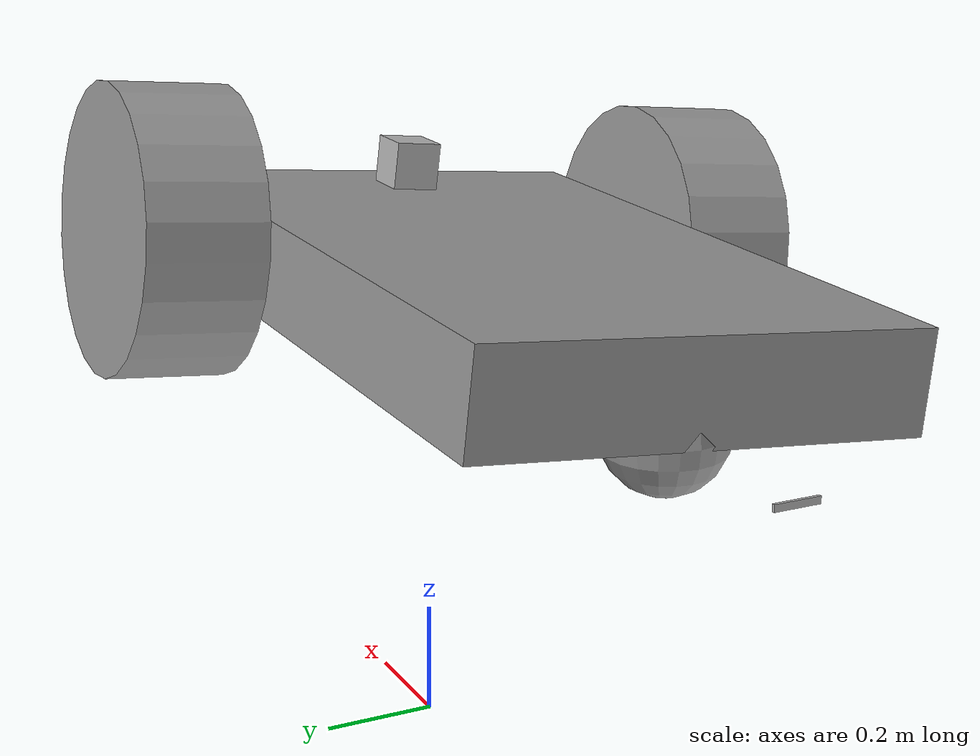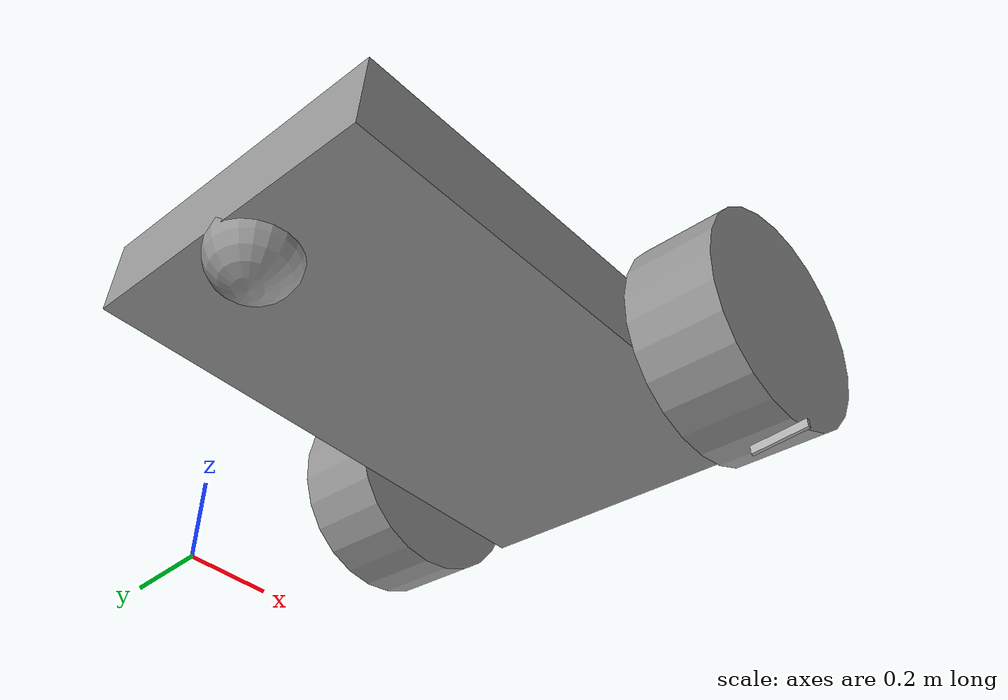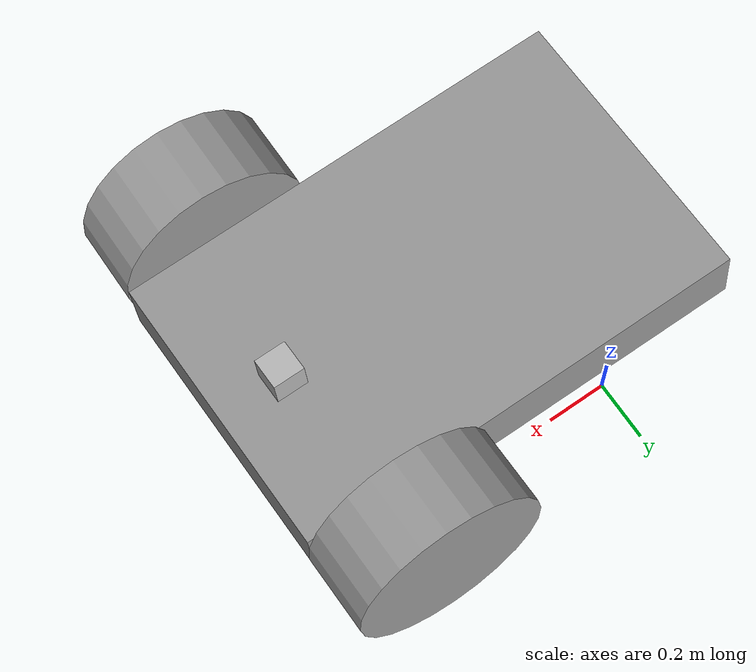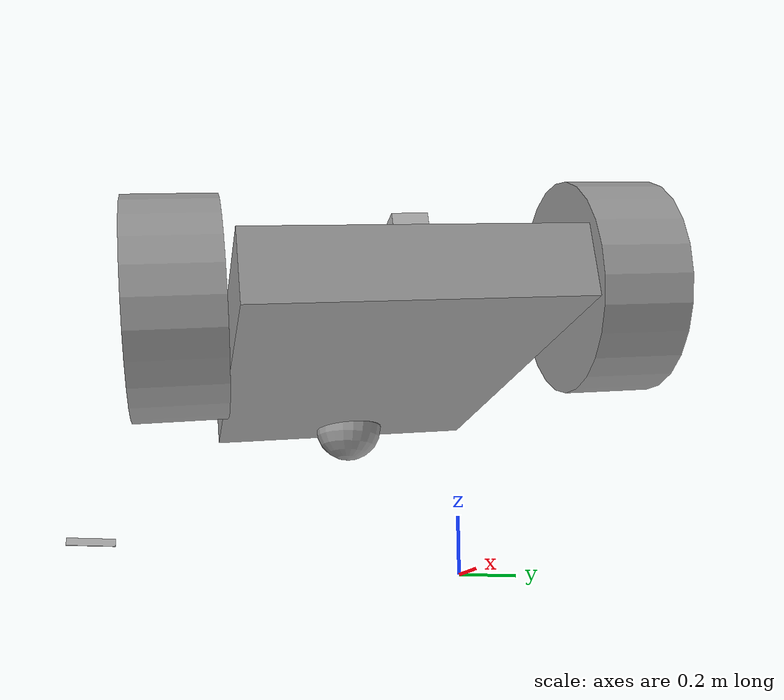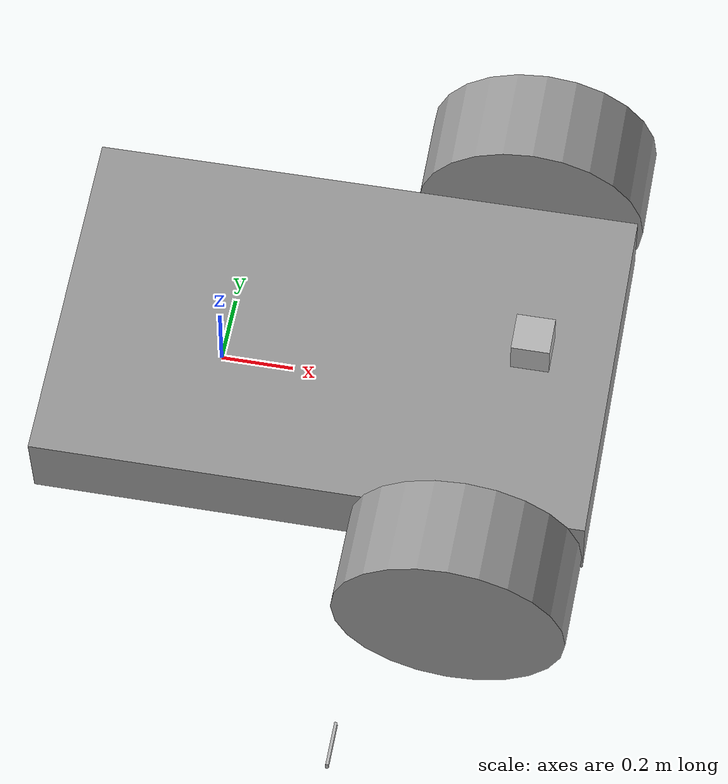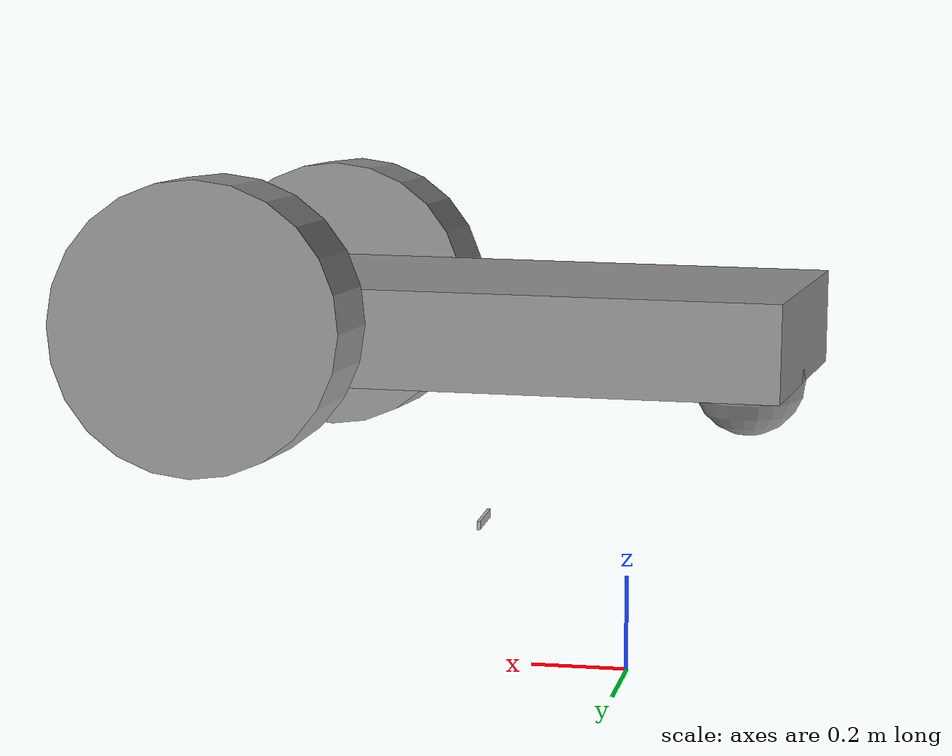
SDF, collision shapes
<?xml version='1.0'?>
<sdf version='1.6'>
  <model name='gazebo_finally1'>
    <link name='link_0'>
      <inertial>
        <mass>0.268461</mass>
        <inertia>
          <ixx>0.019799</ixx>
          <ixy>0</ixy>
          <ixz>0</ixz>
          <iyy>0.0470204</iyy>
          <iyz>0</iyz>
          <izz>0.064964</izz>
        </inertia>
        <pose frame=''>0 0 0 0 -0 0</pose>
      </inertial>
      <pose frame=''>0.399341 -0.379491 0.647925 0.1 -0 0</pose>
      <gravity>1</gravity>
      <self_collide>0</self_collide>
      <kinematic>0</kinematic>
      <enable_wind>0</enable_wind>
      <visual name='visual'>
        <pose frame=''>0 0 0 0 -0 0</pose>
        <geometry>
          <box>
            <size>1.43538 0.918441 0.203637</size>
          </box>
        </geometry>
        <material>
          <lighting>1</lighting>
          <script>
            <uri>file://media/materials/scripts/gazebo.material</uri>
            <name>Gazebo/Grey</name>
          </script>
          <shader type='vertex'>
            <normal_map>__default__</normal_map>
          </shader>
          <ambient>0.3 0.3 0.3 1</ambient>
          <diffuse>0.7 0.7 0.7 1</diffuse>
          <specular>0.01 0.01 0.01 1</specular>
          <emissive>0 0 0 1</emissive>
        </material>
        <transparency>0</transparency>
        <cast_shadows>1</cast_shadows>
      </visual>
      <collision name='collision'>
        <laser_retro>0</laser_retro>
        <max_contacts>10</max_contacts>
        <pose frame=''>0 0 0 0 -0 0</pose>
        <geometry>
          <box>
            <size>1.43538 0.918441 0.203637</size>
          </box>
        </geometry>
        <surface>
          <friction>
            <ode>
              <mu>1</mu>
              <mu2>1</mu2>
              <fdir1>0 0 0</fdir1>
              <slip1>0</slip1>
              <slip2>0</slip2>
            </ode>
            <torsional>
              <coefficient>1</coefficient>
              <patch_radius>0</patch_radius>
              <surface_radius>0</surface_radius>
              <use_patch_radius>1</use_patch_radius>
              <ode>
                <slip>0</slip>
              </ode>
            </torsional>
          </friction>
          <bounce>
            <restitution_coefficient>0</restitution_coefficient>
            <threshold>1e+06</threshold>
          </bounce>
          <contact>
            <collide_without_contact>0</collide_without_contact>
            <collide_without_contact_bitmask>1</collide_without_contact_bitmask>
            <collide_bitmask>1</collide_bitmask>
            <ode>
              <soft_cfm>0</soft_cfm>
              <soft_erp>0.2</soft_erp>
              <kp>1e+13</kp>
              <kd>1</kd>
              <max_vel>0.01</max_vel>
              <min_depth>0</min_depth>
            </ode>
            <bullet>
              <split_impulse>1</split_impulse>
              <split_impulse_penetration_threshold>-0.01</split_impulse_penetration_threshold>
              <soft_cfm>0</soft_cfm>
              <soft_erp>0.2</soft_erp>
              <kp>1e+13</kp>
              <kd>1</kd>
            </bullet>
          </contact>
        </surface>
      </collision>
    </link>
    <link name='link_2_clone'>
      <inertial>
        <mass>1</mass>
        <inertia>
          <ixx>0.145833</ixx>
          <ixy>0</ixy>
          <ixz>0</ixz>
          <iyy>0.145833</iyy>
          <iyz>0</iyz>
          <izz>0.125</izz>
        </inertia>
        <pose frame=''>0 0 0 1.5707 -0 0</pose>
      </inertial>
      <pose frame=''>0.831087 0.215329 0.738794 1.6717 -0 0</pose>
      <gravity>1</gravity>
      <self_collide>0</self_collide>
      <kinematic>0</kinematic>
      <enable_wind>0</enable_wind>
      <visual name='visual'>
        <pose frame=''>0 0 0 0 -0 0</pose>
        <geometry>
          <cylinder>
            <radius>0.3</radius>
            <length>0.25</length>
          </cylinder>
        </geometry>
        <material>
          <lighting>1</lighting>
          <script>
            <uri>file://media/materials/scripts/gazebo.material</uri>
            <name>Gazebo/Grey</name>
          </script>
          <shader type='vertex'>
            <normal_map>__default__</normal_map>
          </shader>
          <ambient>0.3 0.3 0.3 1</ambient>
          <diffuse>0.7 0.7 0.7 1</diffuse>
          <specular>0.01 0.01 0.01 1</specular>
          <emissive>0 0 0 1</emissive>
        </material>
        <transparency>0</transparency>
        <cast_shadows>1</cast_shadows>
      </visual>
      <collision name='collision'>
        <laser_retro>0</laser_retro>
        <max_contacts>10</max_contacts>
        <pose frame=''>0 0 0 0 -0 0</pose>
        <geometry>
          <cylinder>
            <radius>0.3</radius>
            <length>0.25</length>
          </cylinder>
        </geometry>
        <surface>
          <friction>
            <ode>
              <mu>1</mu>
              <mu2>1</mu2>
              <fdir1>0 0 0</fdir1>
              <slip1>0</slip1>
              <slip2>0</slip2>
            </ode>
            <torsional>
              <coefficient>1</coefficient>
              <patch_radius>0</patch_radius>
              <surface_radius>0</surface_radius>
              <use_patch_radius>1</use_patch_radius>
              <ode>
                <slip>0</slip>
              </ode>
            </torsional>
          </friction>
          <bounce>
            <restitution_coefficient>0</restitution_coefficient>
            <threshold>1e+06</threshold>
          </bounce>
          <contact>
            <collide_without_contact>0</collide_without_contact>
            <collide_without_contact_bitmask>1</collide_without_contact_bitmask>
            <collide_bitmask>1</collide_bitmask>
            <ode>
              <soft_cfm>0</soft_cfm>
              <soft_erp>0.2</soft_erp>
              <kp>1e+13</kp>
              <kd>1</kd>
              <max_vel>0.01</max_vel>
              <min_depth>0</min_depth>
            </ode>
            <bullet>
              <split_impulse>1</split_impulse>
              <split_impulse_penetration_threshold>-0.01</split_impulse_penetration_threshold>
              <soft_cfm>0</soft_cfm>
              <soft_erp>0.2</soft_erp>
              <kp>1e+13</kp>
              <kd>1</kd>
            </bullet>
          </contact>
        </surface>
      </collision>
    </link>
    <link name='link_2_clone_clone'>
      <inertial>
        <mass>1</mass>
        <inertia>
          <ixx>0.145833</ixx>
          <ixy>0</ixy>
          <ixz>0</ixz>
          <iyy>0.145833</iyy>
          <iyz>0</iyz>
          <izz>0.125</izz>
        </inertia>
        <pose frame=''>0 0 0 0 -0 0</pose>
      </inertial>
      <pose frame=''>0.814783 -0.985352 0.594172 1.675 0.001809 -0.014974</pose>
      <gravity>1</gravity>
      <self_collide>0</self_collide>
      <kinematic>0</kinematic>
      <enable_wind>0</enable_wind>
      <visual name='visual'>
        <pose frame=''>0 0 0 0 -0 0</pose>
        <geometry>
          <cylinder>
            <radius>0.3</radius>
            <length>0.25</length>
          </cylinder>
        </geometry>
        <material>
          <lighting>1</lighting>
          <script>
            <uri>file://media/materials/scripts/gazebo.material</uri>
            <name>Gazebo/Grey</name>
          </script>
          <shader type='vertex'>
            <normal_map>__default__</normal_map>
          </shader>
          <ambient>0.3 0.3 0.3 1</ambient>
          <diffuse>0.7 0.7 0.7 1</diffuse>
          <specular>0.01 0.01 0.01 1</specular>
          <emissive>0 0 0 1</emissive>
        </material>
        <transparency>0</transparency>
        <cast_shadows>1</cast_shadows>
      </visual>
      <collision name='collision'>
        <laser_retro>0</laser_retro>
        <max_contacts>10</max_contacts>
        <pose frame=''>0 0 0 0 -0 0</pose>
        <geometry>
          <cylinder>
            <radius>0.3</radius>
            <length>0.25</length>
          </cylinder>
        </geometry>
        <surface>
          <friction>
            <ode>
              <mu>1</mu>
              <mu2>1</mu2>
              <fdir1>0 0 0</fdir1>
              <slip1>0</slip1>
              <slip2>0</slip2>
            </ode>
            <torsional>
              <coefficient>1</coefficient>
              <patch_radius>0</patch_radius>
              <surface_radius>0</surface_radius>
              <use_patch_radius>1</use_patch_radius>
              <ode>
                <slip>0</slip>
              </ode>
            </torsional>
          </friction>
          <bounce>
            <restitution_coefficient>0</restitution_coefficient>
            <threshold>1e+06</threshold>
          </bounce>
          <contact>
            <collide_without_contact>0</collide_without_contact>
            <collide_without_contact_bitmask>1</collide_without_contact_bitmask>
            <collide_bitmask>1</collide_bitmask>
            <ode>
              <soft_cfm>0</soft_cfm>
              <soft_erp>0.2</soft_erp>
              <kp>1e+13</kp>
              <kd>1</kd>
              <max_vel>0.01</max_vel>
              <min_depth>0</min_depth>
            </ode>
            <bullet>
              <split_impulse>1</split_impulse>
              <split_impulse_penetration_threshold>-0.01</split_impulse_penetration_threshold>
              <soft_cfm>0</soft_cfm>
              <soft_erp>0.2</soft_erp>
              <kp>1e+13</kp>
              <kd>1</kd>
            </bullet>
          </contact>
        </surface>
      </collision>
    </link>
    <link name='link_5'>
      <inertial>
        <mass>1</mass>
        <inertia>
          <ixx>0.1</ixx>
          <ixy>0</ixy>
          <ixz>0</ixz>
          <iyy>0.1</iyy>
          <iyz>0</iyz>
          <izz>0.1</izz>
        </inertia>
        <pose frame=''>0 0 0 0 -0 0</pose>
      </inertial>
      <pose frame=''>-0.203161 -0.358328 0.551395 -0 -0 -0</pose>
      <gravity>1</gravity>
      <self_collide>0</self_collide>
      <kinematic>0</kinematic>
      <enable_wind>0</enable_wind>
      <visual name='visual'>
        <pose frame=''>0 0 0 0 -0 0</pose>
        <geometry>
          <sphere>
            <radius>0.12</radius>
          </sphere>
        </geometry>
        <material>
          <lighting>1</lighting>
          <script>
            <uri>file://media/materials/scripts/gazebo.material</uri>
            <name>Gazebo/Grey</name>
          </script>
          <shader type='vertex'>
            <normal_map>__default__</normal_map>
          </shader>
          <ambient>0.3 0.3 0.3 1</ambient>
          <diffuse>0.7 0.7 0.7 1</diffuse>
          <specular>0.01 0.01 0.01 1</specular>
          <emissive>0 0 0 1</emissive>
        </material>
        <transparency>0</transparency>
        <cast_shadows>1</cast_shadows>
      </visual>
      <collision name='collision'>
        <laser_retro>0</laser_retro>
        <max_contacts>10</max_contacts>
        <pose frame=''>0 0 0 0 -0 0</pose>
        <geometry>
          <sphere>
            <radius>0.12</radius>
          </sphere>
        </geometry>
        <surface>
          <friction>
            <ode>
              <mu>1</mu>
              <mu2>1</mu2>
              <fdir1>0 0 0</fdir1>
              <slip1>0</slip1>
              <slip2>0</slip2>
            </ode>
            <torsional>
              <coefficient>1</coefficient>
              <patch_radius>0</patch_radius>
              <surface_radius>0</surface_radius>
              <use_patch_radius>1</use_patch_radius>
              <ode>
                <slip>0</slip>
              </ode>
            </torsional>
          </friction>
          <bounce>
            <restitution_coefficient>0</restitution_coefficient>
            <threshold>1e+06</threshold>
          </bounce>
          <contact>
            <collide_without_contact>0</collide_without_contact>
            <collide_without_contact_bitmask>1</collide_without_contact_bitmask>
            <collide_bitmask>1</collide_bitmask>
            <ode>
              <soft_cfm>0</soft_cfm>
              <soft_erp>0.2</soft_erp>
              <kp>1e+13</kp>
              <kd>1</kd>
              <max_vel>0.01</max_vel>
              <min_depth>0</min_depth>
            </ode>
            <bullet>
              <split_impulse>1</split_impulse>
              <split_impulse_penetration_threshold>-0.01</split_impulse_penetration_threshold>
              <soft_cfm>0</soft_cfm>
              <soft_erp>0.2</soft_erp>
              <kp>1e+13</kp>
              <kd>1</kd>
            </bullet>
          </contact>
        </surface>
      </collision>
    </link>
    <model name='camera'>
      <pose frame=''>0.906951 -0.372268 0.81011 0.116955 -0 0</pose>
      <link name='link'>
        <inertial>
          <mass>0.1</mass>
          <inertia>
            <ixx>0.000166667</ixx>
            <iyy>0.000166667</iyy>
            <izz>0.000166667</izz>
            <ixy>0</ixy>
            <ixz>0</ixz>
            <iyz>0</iyz>
          </inertia>
        </inertial>
        <collision name='collision'>
          <geometry>
            <box>
              <size>0.1 0.1 0.1</size>
            </box>
          </geometry>
          <max_contacts>10</max_contacts>
          <surface>
            <contact>
              <ode/>
            </contact>
            <bounce/>
            <friction>
              <torsional>
                <ode/>
              </torsional>
              <ode/>
            </friction>
          </surface>
        </collision>
        <visual name='visual'>
          <geometry>
            <box>
              <size>0.1 0.1 0.1</size>
            </box>
          </geometry>
        </visual>
        <sensor name='camera' type='camera'>
          <camera name='__default__'>
            <horizontal_fov>1.047</horizontal_fov>
            <image>
              <width>320</width>
              <height>240</height>
            </image>
            <clip>
              <near>0.1</near>
              <far>100</far>
            </clip>
          </camera>
          <always_on>1</always_on>
          <update_rate>30</update_rate>
          <visualize>1</visualize>
        </sensor>
        <self_collide>0</self_collide>
        <enable_wind>0</enable_wind>
        <kinematic>0</kinematic>
      </link>
    </model>
    <model name='intel_realsense_r200'>
      <pose frame=''>0.527541 -1.17727 0.01 -0 -0 -0</pose>
      <link name='link'>
        <inertial>
          <mass>0.2</mass>
          <inertia>
            <ixx>0.00014395</ixx>
            <ixy>0</ixy>
            <ixz>0</ixz>
            <iyy>3.84e-06</iyy>
            <iyz>0</iyz>
            <izz>0.00014136</izz>
          </inertia>
        </inertial>
        <collision name='collision'>
          <geometry>
            <box>
              <size>0.008 0.13 0.02</size>
            </box>
          </geometry>
          <surface>
            <contact>
              <ode>
                <max_vel>0.1</max_vel>
                <min_depth>0.001</min_depth>
              </ode>
            </contact>
            <friction>
              <ode>
                <mu>0.4</mu>
                <mu2>0.4</mu2>
              </ode>
              <torsional>
                <ode/>
              </torsional>
            </friction>
            <bounce/>
          </surface>
          <max_contacts>10</max_contacts>
        </collision>
        <visual name='visual'>
          <geometry>
            <mesh>
              <uri>model://intel_realsense_r200/meshes/realsense_r200.dae</uri>
            </mesh>
          </geometry>
        </visual>
        <sensor name='camera' type='depth'>
          <pose frame=''>0.001 -0.045 0.003 0 -0 0</pose>
          <update_rate>60</update_rate>
          <camera name='__default__'>
            <horizontal_fov>0.976899</horizontal_fov>
            <image>
              <width>480</width>
              <height>360</height>
              <format>R8G8B8</format>
            </image>
            <clip>
              <near>0.5</near>
              <far>10</far>
            </clip>
          </camera>
        </sensor>
        <self_collide>0</self_collide>
        <enable_wind>0</enable_wind>
        <kinematic>0</kinematic>
      </link>
    </model>
    <joint name='link_0_JOINT_1' type='revolute'>
      <parent>link_0</parent>
      <child>link_2_clone</child>
      <pose frame=''>0 0 0 0 -0 0</pose>
      <axis>
        <xyz>0 0 1</xyz>
        <use_parent_model_frame>0</use_parent_model_frame>
        <limit>
          <lower>-1.79769e+308</lower>
          <upper>1.79769e+308</upper>
          <effort>-1</effort>
          <velocity>-1</velocity>
        </limit>
        <dynamics>
          <spring_reference>0</spring_reference>
          <spring_stiffness>0</spring_stiffness>
          <damping>0</damping>
        </dynamics>
      </axis>
      <physics>
        <ode>
          <limit>
            <cfm>0</cfm>
            <erp>0.2</erp>
          </limit>
          <suspension>
            <cfm>0</cfm>
            <erp>0.2</erp>
          </suspension>
        </ode>
      </physics>
    </joint>
    <joint name='link_0_JOINT_2' type='revolute'>
      <parent>link_0</parent>
      <child>link_2_clone_clone</child>
      <pose frame=''>0 0 0 0 -0 0</pose>
      <axis>
        <xyz>-0 -0 -1</xyz>
        <use_parent_model_frame>0</use_parent_model_frame>
        <limit>
          <lower>-1.79769e+308</lower>
          <upper>1.79769e+308</upper>
          <effort>-1</effort>
          <velocity>-1</velocity>
        </limit>
        <dynamics>
          <spring_reference>0</spring_reference>
          <spring_stiffness>0</spring_stiffness>
          <damping>0</damping>
        </dynamics>
      </axis>
      <physics>
        <ode>
          <limit>
            <cfm>0</cfm>
            <erp>0.2</erp>
          </limit>
          <suspension>
            <cfm>0</cfm>
            <erp>0.2</erp>
          </suspension>
        </ode>
      </physics>
    </joint>
    <joint name='link_0_JOINT_3' type='ball'>
      <parent>link_0</parent>
      <child>link_5</child>
      <pose frame=''>0 0 0 0 -0 0</pose>
      <physics>
        <ode>
          <limit>
            <cfm>0</cfm>
            <erp>0.2</erp>
          </limit>
          <suspension>
            <cfm>0</cfm>
            <erp>0.2</erp>
          </suspension>
        </ode>
      </physics>
    </joint>
    <joint name='link_0_JOINT_4' type='fixed'>
      <parent>link_0</parent>
      <child>camera::link</child>
      <pose frame=''>0 0 0 0 -0 0</pose>
      <physics>
        <ode>
          <limit>
            <cfm>0</cfm>
            <erp>0.2</erp>
          </limit>
          <suspension>
            <cfm>0</cfm>
            <erp>0.2</erp>
          </suspension>
        </ode>
      </physics>
    </joint>
    <static>0</static>
    <allow_auto_disable>1</allow_auto_disable>
    <plugin name='followerfinally' filename='libfollowerfinallyplugin.so'/>
  </model>
</sdf>
